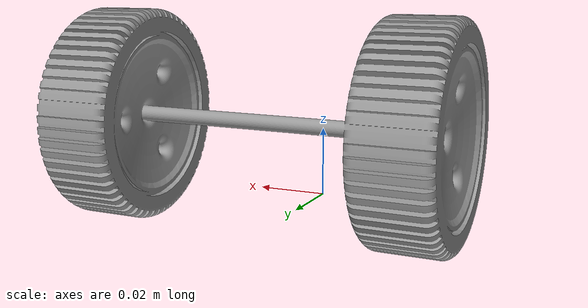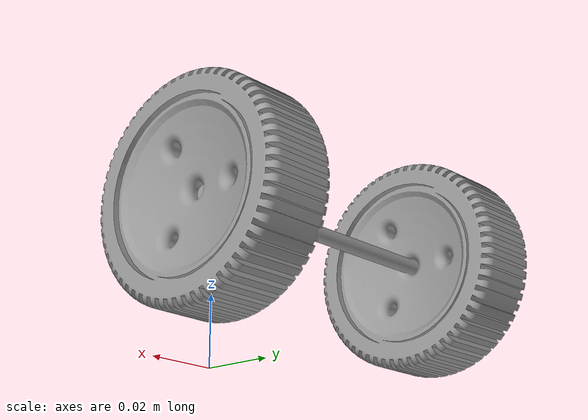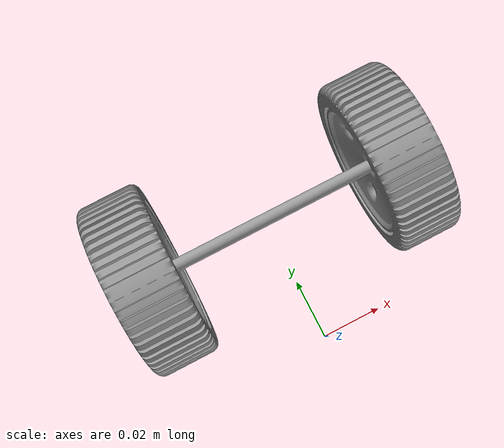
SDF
<?xml version="1.0" ?>
<sdf version="1.5">
  <model name="axle_wheels">
    <pose>0 0.040 0.028 0 0 0</pose>
    <link name="link">
      <inertial>
        <mass>0.1</mass>
        <inertia>
          <ixx>0.0001</ixx>
          <ixy>0</ixy>
          <ixz>0</ixz>
          <iyy>0.0001</iyy>
          <iyz>0</iyz>
          <izz>0.0001</izz>
        </inertia>
      </inertial>
      <collision name="axle_collision">
        <pose>0 0 0.0 0 1.57079632679 0</pose>
        <geometry>
          <cylinder>
            <radius>0.0025</radius>
            <length>0.08</length>
          </cylinder>
        </geometry>
      </collision>
      <collision name="wheel_0_collision">
        <pose>-0.0405 0 0.0 0 1.57079632679 0</pose>
        <geometry>
          <cylinder>
            <radius>0.028</radius>
            <length>0.02</length>
          </cylinder>
        </geometry>
      </collision>
      <collision name="wheel_1_collision">
        <pose>0.0405 0 0.0 0 1.57079632679 0</pose>
        <geometry>
          <cylinder>
            <radius>0.028</radius>
            <length>0.02</length>
          </cylinder>
        </geometry>
      </collision>
      <visual name="visual">
        <pose>0 0 0.0 0 0 0</pose>
        <geometry>
          <mesh>
            <uri>model://axle_wheels/meshes/axle_wheels.dae</uri>
            <scale>0.001 0.001 0.001</scale>
          </mesh>
        </geometry>
        <material>
          <script>
            <uri>file://media/materials/scripts/gazebo.material</uri>
            <name>Gazebo/Grey</name>
          </script>
        </material>
      </visual>
    </link>
  </model>
</sdf>
